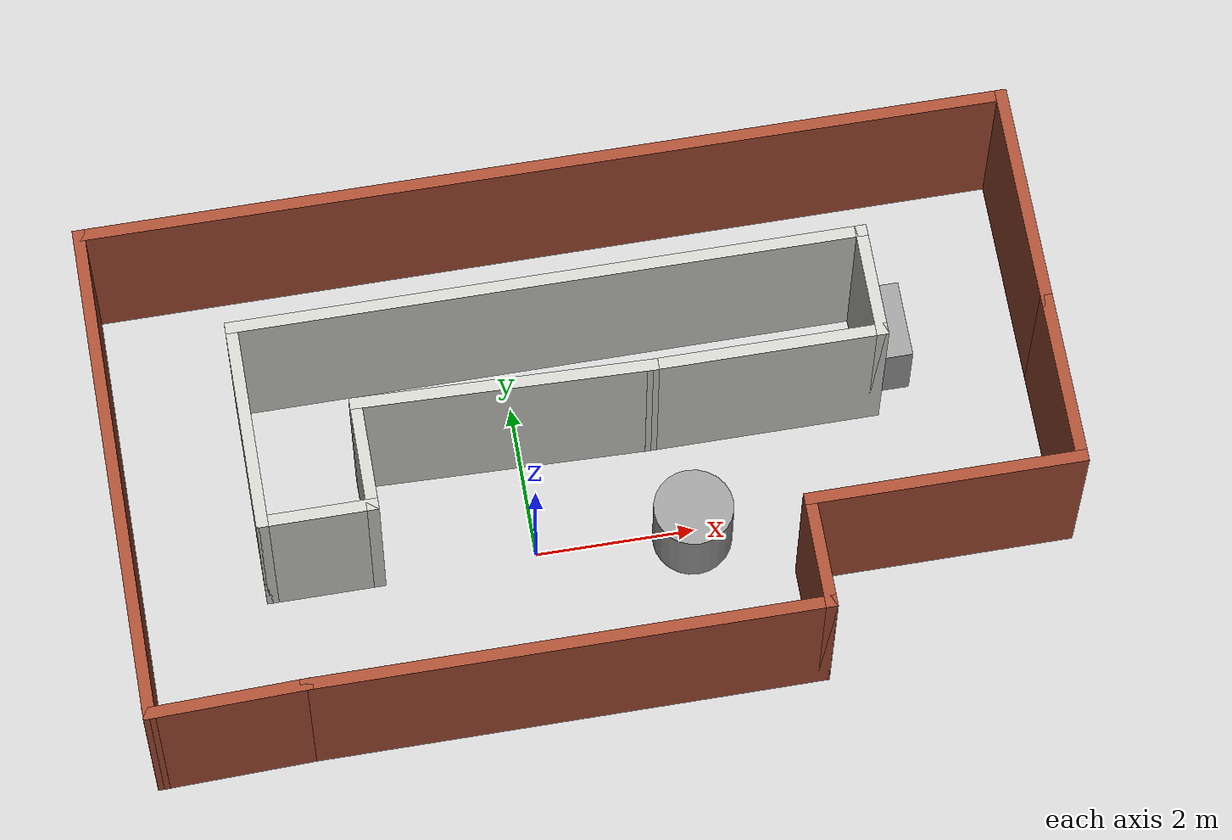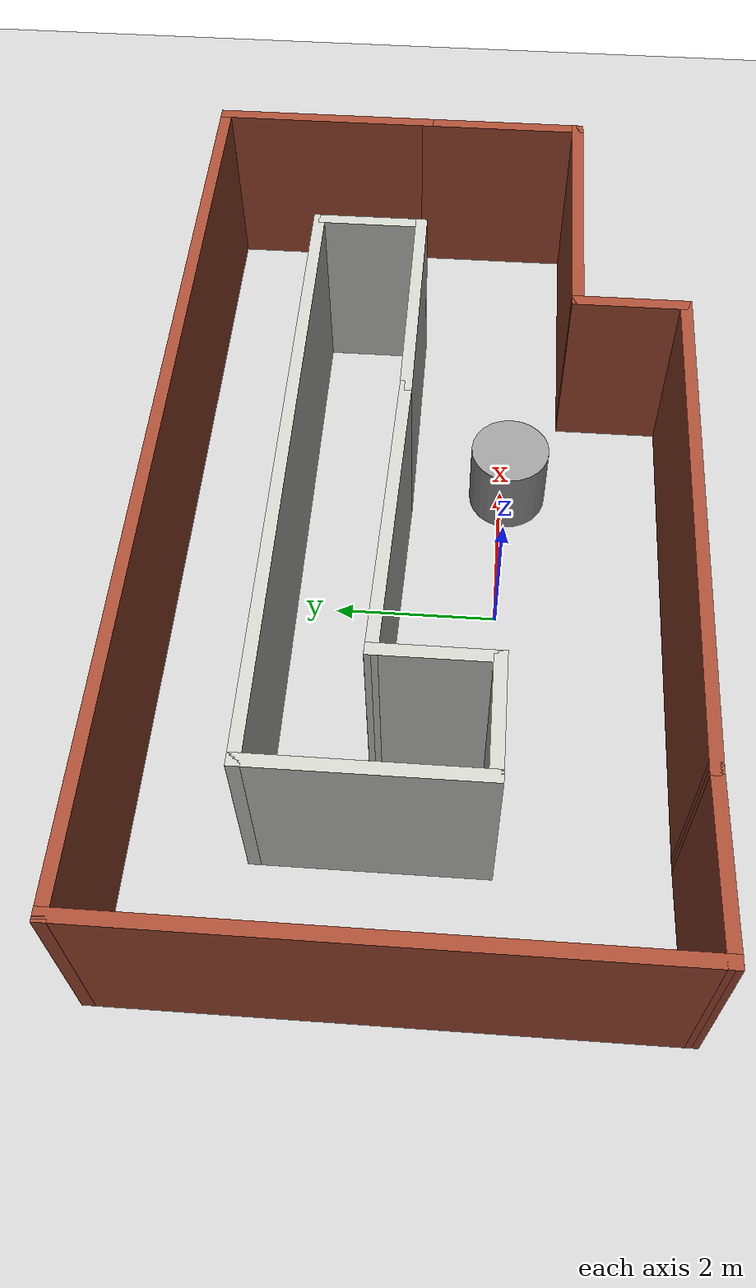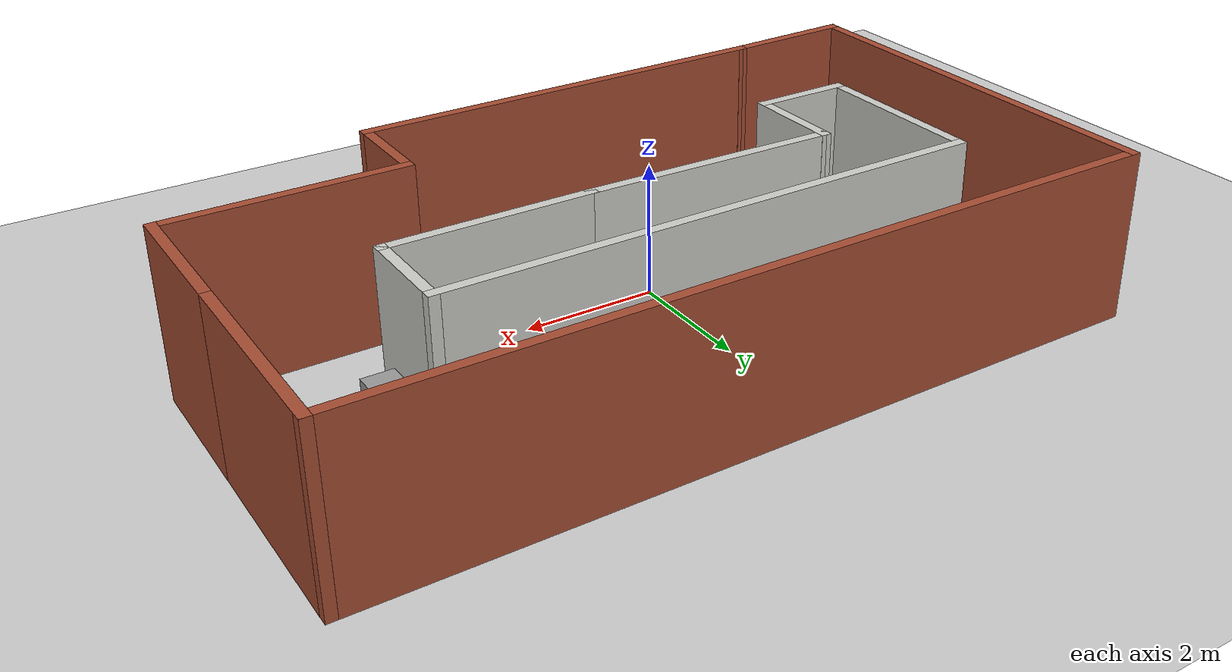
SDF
<sdf version="1.7">
 <world name="default">
  <light name="sun" type="directional">
   <pose>0 0 10 0 -0 0</pose>
   <diffuse>0.8 0.8 0.8 1</diffuse>
   <specular>0.2 0.2 0.2 1</specular>
   <attenuation>
    <range>1000</range>
    <constant>0.9</constant>
    <linear>0.01</linear>
    <quadratic>0.001</quadratic>
   </attenuation>
   <direction>-0.5 0.1 -0.9</direction>
   <spot><inner_angle>0</inner_angle><outer_angle>0</outer_angle><falloff>0</falloff></spot>
  </light>
  <model name="ground_plane">
   <static>1</static>
   <link name="link">
    <collision name="collision">
     <geometry><plane><normal>0 0 1</normal><size>100 100</size></plane></geometry>
     <surface><friction><ode><mu>100</mu><mu2>50</mu2></ode></friction></surface>
    </collision>
    <visual name="visual">
     <cast_shadows>0</cast_shadows>
     <geometry><plane><normal>0 0 1</normal><size>100 100</size></plane></geometry>
     <material>
      <script><uri>file://media/materials/scripts/gazebo.material</uri><name>Gazebo/Grey</name></script>
     </material>
    </visual>
   </link>
  </model>
  <gravity>0 0 -9.8</gravity>
  <magnetic_field>6e-06 2.3e-05 -4.2e-05</magnetic_field>
  <atmosphere type="adiabatic"/>
  <physics type="ode">
   <max_step_size>0.001</max_step_size>
   <real_time_factor>1</real_time_factor>
   <real_time_update_rate>1000</real_time_update_rate>
  </physics>
  <scene><ambient>0.4 0.4 0.4 1</ambient><background>0.7 0.7 0.7 1</background><shadows>1</shadows></scene>
  <audio><device>default</device></audio>
  <spherical_coordinates>
   <surface_model>EARTH_WGS84</surface_model>
   <latitude_deg>0</latitude_deg>
   <longitude_deg>0</longitude_deg>
   <elevation>0</elevation>
   <heading_deg>0</heading_deg>
  </spherical_coordinates>
  <model name="Untitled">
   <pose>0.779027 0.954027 0 0 -0 0</pose>
   <link name="Wall_0">
    <collision name="Wall_0_Collision">
     <geometry><box><size>6.5 0.15 2.5</size></box></geometry>
     <pose>0 0 1.25 0 -0 0</pose>
    </collision>
    <visual name="Wall_0_Visual">
     <pose>0 0 1.25 0 -0 0</pose>
     <geometry><box><size>6.5 0.15 2.5</size></box></geometry>
     <material>
      <script><uri>file://media/materials/scripts/gazebo.material</uri><name>Gazebo/Bricks</name></script>
      <ambient>1 1 1 1</ambient>
     </material>
     <meta><layer>0</layer></meta>
    </visual>
    <pose>-0.724027 -3.12403 0 0 -0 0</pose>
   </link>
   <link name="Wall_10">
    <collision name="Wall_10_Collision">
     <geometry><box><size>3 0.15 2.5</size></box></geometry>
     <pose>0 0 1.25 0 -0 0</pose>
    </collision>
    <visual name="Wall_10_Visual">
     <pose>0 0 1.25 0 -0 0</pose>
     <geometry><box><size>3 0.15 2.5</size></box></geometry>
     <material>
      <script><uri>file://media/materials/scripts/gazebo.material</uri><name>Gazebo/CeilingTiled</name></script>
      <ambient>1 1 1 1</ambient>
     </material>
     <meta><layer>0</layer></meta>
    </visual>
    <pose>2.30084 0.283052 0 0 -0 0</pose>
   </link>
   <link name="Wall_11">
    <collision name="Wall_11_Collision">
     <geometry><box><size>1.5 0.15 2.5</size></box></geometry>
     <pose>0 0 1.25 0 -0 0</pose>
    </collision>
    <visual name="Wall_11_Visual">
     <pose>0 0 1.25 0 -0 0</pose>
     <geometry><box><size>1.5 0.15 2.5</size></box></geometry>
     <material>
      <script><uri>file://media/materials/scripts/gazebo.material</uri><name>Gazebo/CeilingTiled</name></script>
      <ambient>1 1 1 1</ambient>
     </material>
     <meta><layer>0</layer></meta>
    </visual>
    <pose>3.72584 0.958052 0 0 -0 1.5708</pose>
   </link>
   <link name="Wall_12">
    <collision name="Wall_12_Collision">
     <geometry><box><size>8 0.15 2.5</size></box></geometry>
     <pose>0 0 1.25 0 -0 0</pose>
    </collision>
    <visual name="Wall_12_Visual">
     <pose>0 0 1.25 0 -0 0</pose>
     <geometry><box><size>8 0.15 2.5</size></box></geometry>
     <material>
      <script><uri>file://media/materials/scripts/gazebo.material</uri><name>Gazebo/CeilingTiled</name></script>
      <ambient>1 1 1 1</ambient>
     </material>
     <meta><layer>0</layer></meta>
    </visual>
    <pose>-0.199161 1.63305 0 0 -0 3.14159</pose>
   </link>
   <link name="Wall_13">
    <collision name="Wall_13_Collision">
     <geometry><box><size>2.75 0.15 2.5</size></box></geometry>
     <pose>0 0 1.25 0 -0 0</pose>
    </collision>
    <visual name="Wall_13_Visual">
     <pose>0 0 1.25 0 -0 0</pose>
     <geometry><box><size>2.75 0.15 2.5</size></box></geometry>
     <material>
      <script><uri>file://media/materials/scripts/gazebo.material</uri><name>Gazebo/CeilingTiled</name></script>
      <ambient>1 1 1 1</ambient>
     </material>
     <meta><layer>0</layer></meta>
    </visual>
    <pose>-4.12416 0.333052 0 0 -0 -1.5708</pose>
   </link>
   <link name="Wall_15">
    <collision name="Wall_15_Collision">
     <geometry><box><size>11.75 0.15 2.5</size></box></geometry>
     <pose>0 0 1.25 0 -0 0</pose>
    </collision>
    <visual name="Wall_15_Visual">
     <pose>0 0 1.25 0 -0 0</pose>
     <geometry><box><size>11.75 0.15 2.5</size></box></geometry>
     <material>
      <script><uri>file://media/materials/scripts/gazebo.material</uri><name>Gazebo/Bricks</name></script>
      <ambient>1 1 1 1</ambient>
     </material>
     <meta><layer>0</layer></meta>
    </visual>
    <pose>0.000973 3.17597 0 0 -0 3.14159</pose>
   </link>
   <link name="Wall_16">
    <collision name="Wall_16_Collision">
     <geometry><box><size>6.5 0.15 2.5</size></box></geometry>
     <pose>0 0 1.25 0 -0 0</pose>
    </collision>
    <visual name="Wall_16_Visual">
     <pose>0 0 1.25 0 -0 0</pose>
     <geometry><box><size>6.5 0.15 2.5</size></box></geometry>
     <material>
      <script><uri>file://media/materials/scripts/gazebo.material</uri><name>Gazebo/Bricks</name></script>
      <ambient>1 1 1 1</ambient>
     </material>
     <meta><layer>0</layer></meta>
    </visual>
    <pose>-5.79903 0.000973 0 0 -0 -1.5708</pose>
   </link>
   <link name="Wall_17">
    <collision name="Wall_17_Collision">
     <geometry><box><size>2.05066 0.15 2.5</size></box></geometry>
     <pose>0 0 1.25 0 -0 0</pose>
    </collision>
    <visual name="Wall_17_Visual">
     <pose>0 0 1.25 0 -0 0</pose>
     <geometry><box><size>2.05066 0.15 2.5</size></box></geometry>
     <material>
      <script><uri>file://media/materials/scripts/gazebo.material</uri><name>Gazebo/Bricks</name></script>
      <ambient>1 1 1 1</ambient>
     </material>
     <meta><layer>0</layer></meta>
    </visual>
    <pose>-4.84903 -3.14903 0 0 -0 0.02631</pose>
   </link>
   <link name="Wall_19">
    <collision name="Wall_19_Collision">
     <geometry><box><size>1.5 0.15 2.5</size></box></geometry>
     <pose>0 0 1.25 0 -0 0</pose>
    </collision>
    <visual name="Wall_19_Visual">
     <pose>0 0 1.25 0 -0 0</pose>
     <geometry><box><size>1.5 0.15 2.5</size></box></geometry>
     <material>
      <script><uri>file://media/materials/scripts/gazebo.material</uri><name>Gazebo/CeilingTiled</name></script>
      <ambient>1 1 1 1</ambient>
     </material>
     <meta><layer>0</layer></meta>
    </visual>
    <pose>-3.44916 -0.966948 0 0 -0 0</pose>
   </link>
   <link name="Wall_2">
    <collision name="Wall_2_Collision">
     <geometry><box><size>1.5 0.15 2.5</size></box></geometry>
     <pose>0 0 1.25 0 -0 0</pose>
    </collision>
    <visual name="Wall_2_Visual">
     <pose>0 0 1.25 0 -0 0</pose>
     <geometry><box><size>1.5 0.15 2.5</size></box></geometry>
     <material>
      <script><uri>file://media/materials/scripts/gazebo.material</uri><name>Gazebo/Bricks</name></script>
      <ambient>1 1 1 1</ambient>
     </material>
     <meta><layer>0</layer></meta>
    </visual>
    <pose>2.45097 -2.44903 0 0 -0 1.5708</pose>
   </link>
   <link name="Wall_20">
    <collision name="Wall_20_Collision">
     <geometry><box><size>1.5 0.15 2.5</size></box></geometry>
     <pose>0 0 1.25 0 -0 0</pose>
    </collision>
    <visual name="Wall_20_Visual">
     <pose>0 0 1.25 0 -0 0</pose>
     <geometry><box><size>1.5 0.15 2.5</size></box></geometry>
     <material>
      <script><uri>file://media/materials/scripts/gazebo.material</uri><name>Gazebo/CeilingTiled</name></script>
      <ambient>1 1 1 1</ambient>
     </material>
     <meta><layer>0</layer></meta>
    </visual>
    <pose>-2.77416 -0.291948 0 0 -0 1.5708</pose>
   </link>
   <link name="Wall_21">
    <collision name="Wall_21_Collision">
     <geometry><box><size>3.80137 0.15 2.5</size></box></geometry>
     <pose>0 0 1.25 0 -0 0</pose>
    </collision>
    <visual name="Wall_21_Visual">
     <pose>0 0 1.25 0 -0 0</pose>
     <geometry><box><size>3.80137 0.15 2.5</size></box></geometry>
     <material>
      <script><uri>file://media/materials/scripts/gazebo.material</uri><name>Gazebo/CeilingTiled</name></script>
      <ambient>1 1 1 1</ambient>
     </material>
     <meta><layer>0</layer></meta>
    </visual>
    <pose>-0.949161 0.333052 0 0 -0 -0.02739</pose>
   </link>
   <link name="Wall_3">
    <collision name="Wall_3_Collision">
     <geometry><box><size>3.5 0.15 2.5</size></box></geometry>
     <pose>0 0 1.25 0 -0 0</pose>
    </collision>
    <visual name="Wall_3_Visual">
     <pose>0 0 1.25 0 -0 0</pose>
     <geometry><box><size>3.5 0.15 2.5</size></box></geometry>
     <material>
      <script><uri>file://media/materials/scripts/gazebo.material</uri><name>Gazebo/Bricks</name></script>
      <ambient>1 1 1 1</ambient>
     </material>
     <meta><layer>0</layer></meta>
    </visual>
    <pose>4.12597 -1.77403 0 0 -0 0</pose>
   </link>
   <link name="Wall_4">
    <collision name="Wall_4_Collision">
     <geometry><box><size>2.25 0.15 2.5</size></box></geometry>
     <pose>0 0 1.25 0 -0 0</pose>
    </collision>
    <visual name="Wall_4_Visual">
     <pose>0 0 1.25 0 -0 0</pose>
     <geometry><box><size>2.25 0.15 2.5</size></box></geometry>
     <material>
      <script><uri>file://media/materials/scripts/gazebo.material</uri><name>Gazebo/Bricks</name></script>
      <ambient>1 1 1 1</ambient>
     </material>
     <meta><layer>0</layer></meta>
    </visual>
    <pose>5.80097 -0.724027 0 0 -0 1.5708</pose>
   </link>
   <link name="Wall_6">
    <collision name="Wall_6_Collision">
     <geometry><box><size>3 0.15 2.5</size></box></geometry>
     <pose>0 0 1.25 0 -0 0</pose>
    </collision>
    <visual name="Wall_6_Visual">
     <pose>0 0 1.25 0 -0 0</pose>
     <geometry><box><size>3 0.15 2.5</size></box></geometry>
     <material>
      <script><uri>file://media/materials/scripts/gazebo.material</uri><name>Gazebo/Bricks</name></script>
      <ambient>1 1 1 1</ambient>
     </material>
     <meta><layer>0</layer></meta>
    </visual>
    <pose>5.80097 1.75097 0 0 -0 1.5708</pose>
   </link>
   <static>1</static>
  </model>
  <model name="unit_cylinder">
   <pose>1.96078 -0.089613 0.499998 3e-06 4e-06 -0</pose>
   <link name="link">
    <inertial>
     <mass>1</mass>
     <inertia><ixx>0.145833</ixx><ixy>0</ixy><ixz>0</ixz><iyy>0.145833</iyy><iyz>0</iyz><izz>0.125</izz></inertia>
    </inertial>
    <collision name="collision">
     <geometry><cylinder><radius>0.5</radius><length>1</length></cylinder></geometry>
    </collision>
    <visual name="visual">
     <geometry><cylinder><radius>0.5</radius><length>1</length></cylinder></geometry>
     <material>
      <script><name>Gazebo/Grey</name><uri>file://media/materials/scripts/gazebo.material</uri></script>
     </material>
    </visual>
   </link>
  </model>
  <model name="unit_box">
   <pose>4.80464 1.98739 0.5 0 -0 1e-06</pose>
   <link name="link">
    <inertial>
     <mass>1</mass>
     <inertia>
      <ixx>0.166667</ixx>
      <ixy>0</ixy>
      <ixz>0</ixz>
      <iyy>0.166667</iyy>
      <iyz>0</iyz>
      <izz>0.166667</izz>
     </inertia>
    </inertial>
    <collision name="collision"><geometry><box><size>0.449551 1 1</size></box></geometry></collision>
    <visual name="visual">
     <geometry><box><size>0.449551 1 1</size></box></geometry>
     <material>
      <script><name>Gazebo/Grey</name><uri>file://media/materials/scripts/gazebo.material</uri></script>
     </material>
    </visual>
   </link>
  </model>
 </world>
</sdf>
